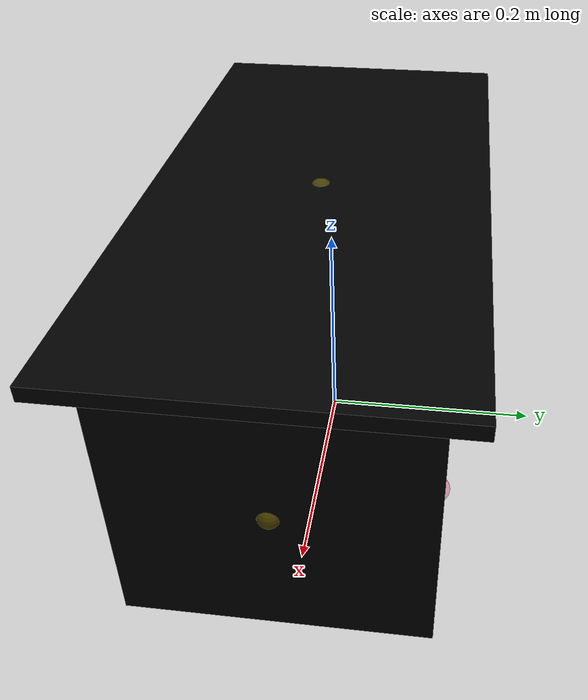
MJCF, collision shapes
<mujoco model="table_benno_0141">
  <custom>
    <numeric data="0.481747 0.210961 0.00505 -0.003953 0.003953 0.707096 -0.707096" name="0_part0_initpos" />
    <numeric data="0.071332 -0.159161 0.00632 0.0 -0.999969 -0.007934 -0.0" name="7_part7_initpos" />
    <numeric data="-0.419935 -0.164663 0.00505 0.707099 -0.0032 0.7071 0.0032" name="6_part6_initpos" />
    <numeric data="0.55709 -0.143364 0.00505 6.8e-05 0.707107 6.8e-05 -0.707107" name="5_part5_initpos" />
    <numeric data="0.086775 0.165266 0.00505 0.999999 -0.0 -0.0 -0.001302" name="4_part4_initpos" />
    <numeric data="0.635713 0.217374 0.00505 0.707104 0.707104 -0.00196 -0.00196" name="3_part3_initpos" />
    <numeric data="-0.457154 0.177846 0.00505 0.707104 0.707105 0.001793 0.001793" name="2_part2_initpos" />
    <numeric data="-0.295801 0.17976 0.00505 0.707089 -0.707089 -0.005055 0.005055" name="1_part1_initpos" />
  </custom>
  <asset>
    <mesh file="table_benno_0141/0.stl" name="part0" scale="0.0005 0.0005 0.0005" />
    <mesh file="table_benno_0141/7.stl" name="part7" scale="0.0005 0.0005 0.0005" />
    <mesh file="table_benno_0141/6.stl" name="part6" scale="0.0005 0.0005 0.0005" />
    <mesh file="table_benno_0141/5.stl" name="part5" scale="0.0005 0.0005 0.0005" />
    <mesh file="table_benno_0141/4.stl" name="part4" scale="0.0005 0.0005 0.0005" />
    <mesh file="table_benno_0141/3.stl" name="part3" scale="0.0005 0.0005 0.0005" />
    <mesh file="table_benno_0141/2.stl" name="part2" scale="0.0005 0.0005 0.0005" />
    <mesh file="table_benno_0141/1.stl" name="part1" scale="0.0005 0.0005 0.0005" />
  </asset>
  <worldbody><body name="combined_body" pos="0.22 0.11 0.1206500015258789" quat="1 0 0 0"><geom conaffinity="0" contype="0" density="0" mesh="part0" name="0_part0_mesh" pos="0.0 0.0 0.0" rgba="0.82 0.71 0.55 1" type="mesh" quat="1 0 0 0" />
      <geom density="50" name="noviz_collision_0_part0_0" pos="0.0 0.0 0.0" quat="1 0 0 0" rgba="0 0 0 0" size="0.033769355 0.00508 0.124242" solref="0.001 1" type="box" />
    <site name="0_part0_horizontal_radius_site" pos="0.0 0.0 0.0" quat="1 0 0 0" rgba="0 0 0 0" size="0.01" />
      <site name="0_part0_top_site" pos="0.0 0.0 0.0" quat="1 0 0 0" rgba="0 0 0 0" size="0.01" />
      <site name="0_part0_bottom_site" pos="0.0 0.0 0.0" quat="1 0 0 0" rgba="0 0 0 0" size="0.01" />
      <site name="0_part0_corner_site8" pos="0.0 0.0 0.0" quat="1 0 0 0" rgba="0 0 0 0" size="0.01" />
      <site name="0_part0_corner_site7" pos="0.0 0.0 0.0" quat="1 0 0 0" rgba="0 0 0 0" size="0.01" />
      <site name="0_part0_corner_site6" pos="0.0 0.0 0.0" quat="1 0 0 0" rgba="0 0 0 0" size="0.01" />
      <site name="0_part0_corner_site5" pos="0.0 0.0 0.0" quat="1 0 0 0" rgba="0 0 0 0" size="0.01" />
      <site name="0_part0_corner_site4" pos="0.0 0.0 0.0" quat="1 0 0 0" rgba="0 0 0 0" size="0.01" />
      <site name="0_part0_corner_site3" pos="0.0 0.0 0.0" quat="1 0 0 0" rgba="0 0 0 0" size="0.01" />
      <site name="0_part0_corner_site2" pos="0.0 0.0 0.0" quat="1 0 0 0" rgba="0 0 0 0" size="0.01" />
      <site name="0_part0_corner_site1" pos="0.0 0.0 0.0" quat="1 0 0 0" rgba="0 0 0 0" size="0.01" />
      <site name="leg-botpanel,0,180,conn_site2" pos="0.0 0.0 0.0" quat="1 0 0 0" rgba="0.9019 0.0980 0.2941 0.3" size="0.01" />
      <site name="leg-sidepanel,0,180,conn_site2" pos="0.0 0.0 0.0" quat="1 0 0 0" rgba="0.2352 0.7058 0.2941 0.3" size="0.01" />
      <geom conaffinity="0" contype="0" density="0" mesh="part7" name="7_part7_mesh" pos="-0.2247900042 -0.11953875 0.12699999845" rgba="0.82 0.71 0.55 1" type="mesh" quat="1 0 0 0" />
      <geom density="50" name="noviz_collision_7_part7_0" pos="-0.2247900042 -0.11953875 0.12699999845" quat="1 0 0 0" rgba="0 0 0 0" size="0.295275 0.15001875 0.00635" solref="0.001 1" type="box" />
    <site name="7_part7_horizontal_radius_site" pos="-0.2247900042 -0.11953875 0.12699999845" quat="1 0 0 0" rgba="0 0 0 0" size="0.01" />
      <site name="7_part7_top_site" pos="-0.2247900042 -0.11953875 0.12699999845" quat="1 0 0 0" rgba="0 0 0 0" size="0.01" />
      <site name="7_part7_bottom_site" pos="-0.2247900042 -0.11953875 0.12699999845" quat="1 0 0 0" rgba="0 0 0 0" size="0.01" />
      <site name="7_part7_corner_site8" pos="-0.2247900042 -0.11953875 0.12699999845" quat="1 0 0 0" rgba="0 0 0 0" size="0.01" />
      <site name="7_part7_corner_site7" pos="-0.2247900042 -0.11953875 0.12699999845" quat="1 0 0 0" rgba="0 0 0 0" size="0.01" />
      <site name="7_part7_corner_site6" pos="-0.2247900042 -0.11953875 0.12699999845" quat="1 0 0 0" rgba="0 0 0 0" size="0.01" />
      <site name="7_part7_corner_site5" pos="-0.2247900042 -0.11953875 0.12699999845" quat="1 0 0 0" rgba="0 0 0 0" size="0.01" />
      <site name="7_part7_corner_site4" pos="-0.2247900042 -0.11953875 0.12699999845" quat="1 0 0 0" rgba="0 0 0 0" size="0.01" />
      <site name="7_part7_corner_site3" pos="-0.2247900042 -0.11953875 0.12699999845" quat="1 0 0 0" rgba="0 0 0 0" size="0.01" />
      <site name="7_part7_corner_site2" pos="-0.2247900042 -0.11953875 0.12699999845" quat="1 0 0 0" rgba="0 0 0 0" size="0.01" />
      <site name="7_part7_corner_site1" pos="-0.2247900042 -0.11953875 0.12699999845" quat="1 0 0 0" rgba="0 0 0 0" size="0.01" />
      <site name="toppanel-sidepanel,0,180,conn_site2" pos="-0.2247900042 -0.11953875 0.12699999845" quat="1 0 0 0" rgba="1.0 0.8823 0.0980 0.3" size="0.01" />
      <site name="toppanel-sidepanel,0,180,conn_site1" pos="-0.2247900042 -0.11953875 0.12699999845" quat="1 0 0 0" rgba="1.0 0.8823 0.0980 0.3" size="0.01" />
      <geom conaffinity="0" contype="0" density="0" mesh="part6" name="6_part6_mesh" pos="-0.48958500644999997 -0.11953875 0.0" rgba="0.82 0.71 0.55 1" type="mesh" quat="1 0 0 0" />
      <geom density="50" name="noviz_collision_6_part6_0" pos="-0.48958500644999997 -0.11953875 0.0" quat="1 0 0 0" rgba="0 0 0 0" size="0.005080015 0.12461875000000001 0.12065000000000001" solref="0.001 1" type="box" />
    <site name="6_part6_horizontal_radius_site" pos="-0.48958500644999997 -0.11953875 0.0" quat="1 0 0 0" rgba="0 0 0 0" size="0.01" />
      <site name="6_part6_top_site" pos="-0.48958500644999997 -0.11953875 0.0" quat="1 0 0 0" rgba="0 0 0 0" size="0.01" />
      <site name="6_part6_bottom_site" pos="-0.48958500644999997 -0.11953875 0.0" quat="1 0 0 0" rgba="0 0 0 0" size="0.01" />
      <site name="6_part6_corner_site8" pos="-0.48958500644999997 -0.11953875 0.0" quat="1 0 0 0" rgba="0 0 0 0" size="0.01" />
      <site name="6_part6_corner_site7" pos="-0.48958500644999997 -0.11953875 0.0" quat="1 0 0 0" rgba="0 0 0 0" size="0.01" />
      <site name="6_part6_corner_site6" pos="-0.48958500644999997 -0.11953875 0.0" quat="1 0 0 0" rgba="0 0 0 0" size="0.01" />
      <site name="6_part6_corner_site5" pos="-0.48958500644999997 -0.11953875 0.0" quat="1 0 0 0" rgba="0 0 0 0" size="0.01" />
      <site name="6_part6_corner_site4" pos="-0.48958500644999997 -0.11953875 0.0" quat="1 0 0 0" rgba="0 0 0 0" size="0.01" />
      <site name="6_part6_corner_site3" pos="-0.48958500644999997 -0.11953875 0.0" quat="1 0 0 0" rgba="0 0 0 0" size="0.01" />
      <site name="6_part6_corner_site2" pos="-0.48958500644999997 -0.11953875 0.0" quat="1 0 0 0" rgba="0 0 0 0" size="0.01" />
      <site name="6_part6_corner_site1" pos="-0.48958500644999997 -0.11953875 0.0" quat="1 0 0 0" rgba="0 0 0 0" size="0.01" />
      <site name="sidepanel-toppanel,0,180,conn_site1" pos="-0.48958500644999997 -0.11953875 0.0" quat="1 0 0 0" rgba="1.0 0.8823 0.0980 0.3" size="0.01" />
      <site name="sidepanel-leg,0,180,conn_site4" pos="-0.48958500644999997 -0.11953875 0.0" quat="1 0 0 0" rgba="0.2352 0.7058 0.2941 0.3" size="0.01" />
      <site name="sidepanel-leg,0,180,conn_site3" pos="-0.48958500644999997 -0.11953875 0.0" quat="1 0 0 0" rgba="0.2352 0.7058 0.2941 0.3" size="0.01" />
      <geom conaffinity="0" contype="0" density="0" mesh="part5" name="5_part5_mesh" pos="0.040004995800000005 -0.11953875 0.0" rgba="0.82 0.71 0.55 1" type="mesh" quat="1 0 0 0" />
      <geom density="50" name="noviz_collision_5_part5_0" pos="0.040004995800000005 -0.11953875 0.0" quat="1 0 0 0" rgba="0 0 0 0" size="0.00508 0.12461875000000001 0.12065000000000001" solref="0.001 1" type="box" />
    <site name="5_part5_horizontal_radius_site" pos="0.040004995800000005 -0.11953875 0.0" quat="1 0 0 0" rgba="0 0 0 0" size="0.01" />
      <site name="5_part5_top_site" pos="0.040004995800000005 -0.11953875 0.0" quat="1 0 0 0" rgba="0 0 0 0" size="0.01" />
      <site name="5_part5_bottom_site" pos="0.040004995800000005 -0.11953875 0.0" quat="1 0 0 0" rgba="0 0 0 0" size="0.01" />
      <site name="5_part5_corner_site8" pos="0.040004995800000005 -0.11953875 0.0" quat="1 0 0 0" rgba="0 0 0 0" size="0.01" />
      <site name="5_part5_corner_site7" pos="0.040004995800000005 -0.11953875 0.0" quat="1 0 0 0" rgba="0 0 0 0" size="0.01" />
      <site name="5_part5_corner_site6" pos="0.040004995800000005 -0.11953875 0.0" quat="1 0 0 0" rgba="0 0 0 0" size="0.01" />
      <site name="5_part5_corner_site5" pos="0.040004995800000005 -0.11953875 0.0" quat="1 0 0 0" rgba="0 0 0 0" size="0.01" />
      <site name="5_part5_corner_site4" pos="0.040004995800000005 -0.11953875 0.0" quat="1 0 0 0" rgba="0 0 0 0" size="0.01" />
      <site name="5_part5_corner_site3" pos="0.040004995800000005 -0.11953875 0.0" quat="1 0 0 0" rgba="0 0 0 0" size="0.01" />
      <site name="5_part5_corner_site2" pos="0.040004995800000005 -0.11953875 0.0" quat="1 0 0 0" rgba="0 0 0 0" size="0.01" />
      <site name="5_part5_corner_site1" pos="0.040004995800000005 -0.11953875 0.0" quat="1 0 0 0" rgba="0 0 0 0" size="0.01" />
      <site name="sidepanel-toppanel,0,180,conn_site2" pos="0.040004995800000005 -0.11953875 0.0" quat="1 0 0 0" rgba="1.0 0.8823 0.0980 0.3" size="0.01" />
      <site name="sidepanel-leg,0,180,conn_site2" pos="0.040004995800000005 -0.11953875 0.0" quat="1 0 0 0" rgba="0.2352 0.7058 0.2941 0.3" size="0.01" />
      <site name="sidepanel-leg,0,180,conn_site1" pos="0.040004995800000005 -0.11953875 0.0" quat="1 0 0 0" rgba="0.2352 0.7058 0.2941 0.3" size="0.01" />
      <geom conaffinity="0" contype="0" density="0" mesh="part4" name="4_part4_mesh" pos="-0.2247900042 -0.11953875 -1.55e-09" rgba="0.82 0.71 0.55 1" type="mesh" quat="1 0 0 0" />
      <geom density="50" name="noviz_collision_4_part4_0" pos="-0.2247900042 -0.11953875 -1.55e-09" quat="1 0 0 0" rgba="0 0 0 0" size="0.259715 0.11445875 0.00508" solref="0.001 1" type="box" />
    <site name="4_part4_horizontal_radius_site" pos="-0.2247900042 -0.11953875 -1.55e-09" quat="1 0 0 0" rgba="0 0 0 0" size="0.01" />
      <site name="4_part4_top_site" pos="-0.2247900042 -0.11953875 -1.55e-09" quat="1 0 0 0" rgba="0 0 0 0" size="0.01" />
      <site name="4_part4_bottom_site" pos="-0.2247900042 -0.11953875 -1.55e-09" quat="1 0 0 0" rgba="0 0 0 0" size="0.01" />
      <site name="4_part4_corner_site8" pos="-0.2247900042 -0.11953875 -1.55e-09" quat="1 0 0 0" rgba="0 0 0 0" size="0.01" />
      <site name="4_part4_corner_site7" pos="-0.2247900042 -0.11953875 -1.55e-09" quat="1 0 0 0" rgba="0 0 0 0" size="0.01" />
      <site name="4_part4_corner_site6" pos="-0.2247900042 -0.11953875 -1.55e-09" quat="1 0 0 0" rgba="0 0 0 0" size="0.01" />
      <site name="4_part4_corner_site5" pos="-0.2247900042 -0.11953875 -1.55e-09" quat="1 0 0 0" rgba="0 0 0 0" size="0.01" />
      <site name="4_part4_corner_site4" pos="-0.2247900042 -0.11953875 -1.55e-09" quat="1 0 0 0" rgba="0 0 0 0" size="0.01" />
      <site name="4_part4_corner_site3" pos="-0.2247900042 -0.11953875 -1.55e-09" quat="1 0 0 0" rgba="0 0 0 0" size="0.01" />
      <site name="4_part4_corner_site2" pos="-0.2247900042 -0.11953875 -1.55e-09" quat="1 0 0 0" rgba="0 0 0 0" size="0.01" />
      <site name="4_part4_corner_site1" pos="-0.2247900042 -0.11953875 -1.55e-09" quat="1 0 0 0" rgba="0 0 0 0" size="0.01" />
      <site name="botpanel-leg,0,180,conn_site4" pos="-0.2247900042 -0.11953875 -1.55e-09" quat="1 0 0 0" rgba="0.9019 0.0980 0.2941 0.3" size="0.01" />
      <site name="botpanel-leg,0,180,conn_site3" pos="-0.2247900042 -0.11953875 -1.55e-09" quat="1 0 0 0" rgba="0.9019 0.0980 0.2941 0.3" size="0.01" />
      <site name="botpanel-leg,0,180,conn_site2" pos="-0.2247900042 -0.11953875 -1.55e-09" quat="1 0 0 0" rgba="0.9019 0.0980 0.2941 0.3" size="0.01" />
      <site name="botpanel-leg,0,180,conn_site1" pos="-0.2247900042 -0.11953875 -1.55e-09" quat="1 0 0 0" rgba="0.9019 0.0980 0.2941 0.3" size="0.01" />
      <geom conaffinity="0" contype="0" density="0" mesh="part3" name="3_part3_mesh" pos="-0.44958000945 -0.2390775 0.0" rgba="0.82 0.71 0.55 1" type="mesh" quat="1 0 0 0" />
      <geom density="50" name="noviz_collision_3_part3_0" pos="-0.44958000945 -0.2390775 0.0" quat="1 0 0 0" rgba="0 0 0 0" size="0.03492502 0.00508 0.12065000000000001" solref="0.001 1" type="box" />
    <site name="3_part3_horizontal_radius_site" pos="-0.44958000945 -0.2390775 0.0" quat="1 0 0 0" rgba="0 0 0 0" size="0.01" />
      <site name="3_part3_top_site" pos="-0.44958000945 -0.2390775 0.0" quat="1 0 0 0" rgba="0 0 0 0" size="0.01" />
      <site name="3_part3_bottom_site" pos="-0.44958000945 -0.2390775 0.0" quat="1 0 0 0" rgba="0 0 0 0" size="0.01" />
      <site name="3_part3_corner_site8" pos="-0.44958000945 -0.2390775 0.0" quat="1 0 0 0" rgba="0 0 0 0" size="0.01" />
      <site name="3_part3_corner_site7" pos="-0.44958000945 -0.2390775 0.0" quat="1 0 0 0" rgba="0 0 0 0" size="0.01" />
      <site name="3_part3_corner_site6" pos="-0.44958000945 -0.2390775 0.0" quat="1 0 0 0" rgba="0 0 0 0" size="0.01" />
      <site name="3_part3_corner_site5" pos="-0.44958000945 -0.2390775 0.0" quat="1 0 0 0" rgba="0 0 0 0" size="0.01" />
      <site name="3_part3_corner_site4" pos="-0.44958000945 -0.2390775 0.0" quat="1 0 0 0" rgba="0 0 0 0" size="0.01" />
      <site name="3_part3_corner_site3" pos="-0.44958000945 -0.2390775 0.0" quat="1 0 0 0" rgba="0 0 0 0" size="0.01" />
      <site name="3_part3_corner_site2" pos="-0.44958000945 -0.2390775 0.0" quat="1 0 0 0" rgba="0 0 0 0" size="0.01" />
      <site name="3_part3_corner_site1" pos="-0.44958000945 -0.2390775 0.0" quat="1 0 0 0" rgba="0 0 0 0" size="0.01" />
      <site name="leg-botpanel,0,180,conn_site4" pos="-0.44958000945 -0.2390775 0.0" quat="1 0 0 0" rgba="0.9019 0.0980 0.2941 0.3" size="0.01" />
      <site name="leg-sidepanel,0,180,conn_site4" pos="-0.44958000945 -0.2390775 0.0" quat="1 0 0 0" rgba="0.2352 0.7058 0.2941 0.3" size="0.01" />
      <geom conaffinity="0" contype="0" density="0" mesh="part2" name="2_part2_mesh" pos="0.0 -0.2390775 0.0" rgba="0.82 0.71 0.55 1" type="mesh" quat="1 0 0 0" />
      <geom density="50" name="noviz_collision_2_part2_0" pos="0.0 -0.2390775 0.0" quat="1 0 0 0" rgba="0 0 0 0" size="0.034925015000000004 0.00508 0.12065000000000001" solref="0.001 1" type="box" />
    <site name="2_part2_horizontal_radius_site" pos="0.0 -0.2390775 0.0" quat="1 0 0 0" rgba="0 0 0 0" size="0.01" />
      <site name="2_part2_top_site" pos="0.0 -0.2390775 0.0" quat="1 0 0 0" rgba="0 0 0 0" size="0.01" />
      <site name="2_part2_bottom_site" pos="0.0 -0.2390775 0.0" quat="1 0 0 0" rgba="0 0 0 0" size="0.01" />
      <site name="2_part2_corner_site8" pos="0.0 -0.2390775 0.0" quat="1 0 0 0" rgba="0 0 0 0" size="0.01" />
      <site name="2_part2_corner_site7" pos="0.0 -0.2390775 0.0" quat="1 0 0 0" rgba="0 0 0 0" size="0.01" />
      <site name="2_part2_corner_site6" pos="0.0 -0.2390775 0.0" quat="1 0 0 0" rgba="0 0 0 0" size="0.01" />
      <site name="2_part2_corner_site5" pos="0.0 -0.2390775 0.0" quat="1 0 0 0" rgba="0 0 0 0" size="0.01" />
      <site name="2_part2_corner_site4" pos="0.0 -0.2390775 0.0" quat="1 0 0 0" rgba="0 0 0 0" size="0.01" />
      <site name="2_part2_corner_site3" pos="0.0 -0.2390775 0.0" quat="1 0 0 0" rgba="0 0 0 0" size="0.01" />
      <site name="2_part2_corner_site2" pos="0.0 -0.2390775 0.0" quat="1 0 0 0" rgba="0 0 0 0" size="0.01" />
      <site name="2_part2_corner_site1" pos="0.0 -0.2390775 0.0" quat="1 0 0 0" rgba="0 0 0 0" size="0.01" />
      <site name="leg-botpanel,0,180,conn_site1" pos="0.0 -0.2390775 0.0" quat="1 0 0 0" rgba="0.9019 0.0980 0.2941 0.3" size="0.01" />
      <site name="leg-sidepanel,0,180,conn_site1" pos="0.0 -0.2390775 0.0" quat="1 0 0 0" rgba="0.2352 0.7058 0.2941 0.3" size="0.01" />
      <geom conaffinity="0" contype="0" density="0" mesh="part1" name="1_part1_mesh" pos="-0.44958000945 0.0 0.0" rgba="0.82 0.71 0.55 1" type="mesh" quat="1 0 0 0" />
      <geom density="50" name="noviz_collision_1_part1_0" pos="-0.44958000945 0.0 0.0" quat="1 0 0 0" rgba="0 0 0 0" size="0.03608069 0.00508 0.124242" solref="0.001 1" type="box" />
    <site name="1_part1_horizontal_radius_site" pos="-0.44958000945 0.0 0.0" quat="1 0 0 0" rgba="0 0 0 0" size="0.01" />
      <site name="1_part1_top_site" pos="-0.44958000945 0.0 0.0" quat="1 0 0 0" rgba="0 0 0 0" size="0.01" />
      <site name="1_part1_bottom_site" pos="-0.44958000945 0.0 0.0" quat="1 0 0 0" rgba="0 0 0 0" size="0.01" />
      <site name="1_part1_corner_site8" pos="-0.44958000945 0.0 0.0" quat="1 0 0 0" rgba="0 0 0 0" size="0.01" />
      <site name="1_part1_corner_site7" pos="-0.44958000945 0.0 0.0" quat="1 0 0 0" rgba="0 0 0 0" size="0.01" />
      <site name="1_part1_corner_site6" pos="-0.44958000945 0.0 0.0" quat="1 0 0 0" rgba="0 0 0 0" size="0.01" />
      <site name="1_part1_corner_site5" pos="-0.44958000945 0.0 0.0" quat="1 0 0 0" rgba="0 0 0 0" size="0.01" />
      <site name="1_part1_corner_site4" pos="-0.44958000945 0.0 0.0" quat="1 0 0 0" rgba="0 0 0 0" size="0.01" />
      <site name="1_part1_corner_site3" pos="-0.44958000945 0.0 0.0" quat="1 0 0 0" rgba="0 0 0 0" size="0.01" />
      <site name="1_part1_corner_site2" pos="-0.44958000945 0.0 0.0" quat="1 0 0 0" rgba="0 0 0 0" size="0.01" />
      <site name="1_part1_corner_site1" pos="-0.44958000945 0.0 0.0" quat="1 0 0 0" rgba="0 0 0 0" size="0.01" />
      <site name="leg-botpanel,0,180,conn_site3" pos="-0.44958000945 0.0 0.0" quat="1 0 0 0" rgba="0.9019 0.0980 0.2941 0.3" size="0.01" />
      <site name="leg-sidepanel,0,180,conn_site3" pos="-0.44958000945 0.0 0.0" quat="1 0 0 0" rgba="0.2352 0.7058 0.2941 0.3" size="0.01" />
      </body></worldbody><actuator />
  <sensor />
  <contact />
  <default />
</mujoco>
